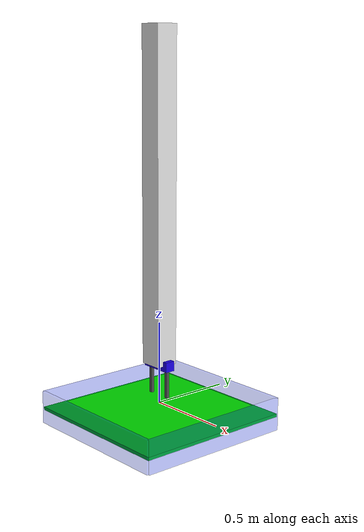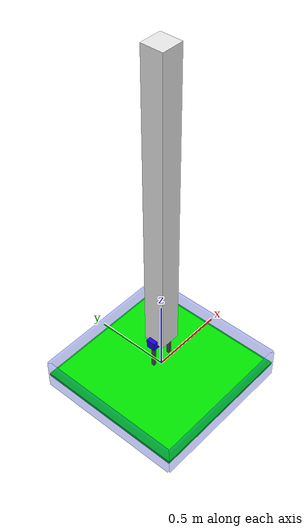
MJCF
<mujoco model="pushing2d">

    <compiler inertiafromgeom="auto" angle="radian" coordinate="local" />
    <option timestep="0.01" gravity="0 0 -9.81" iterations="20" integrator="Euler" />
    <default>
        <joint limited="false" damping="1" />
        <geom contype="1" conaffinity="1" condim="4" friction=".5 .1 .1" density="1000" margin="0.002" />
    </default>

    <worldbody>
        <camera name="maincam" mode= "fixed" fovy="32" euler="0.7 0 0" pos="0 -1.1 1.3"/>
        <body name="gripper" pos="0 0 0.25">
            <inertial pos="0 0 0" mass="30" diaginertia="166.667 166.667 166.667"/>
            <geom type="box" size=".1 .03 .03" rgba="0.1 0.0 0.9 1" />
            <geom type="box" size=".07 .07 1" rgba="0.9 0.9 0.9 1" pos="0 0 1"/>
            <joint name="ball_x" type="slide" pos="0 0 0" axis="1 0 0" limited="true" range="-0.35 0.35"/>
            <joint name="ball_y" type="slide" pos="0 0 0" axis="0 1 0" limited="true" range="-0.35 0.35"/>
            <joint name="ball_z" type="slide" pos="0 0 0" axis="0 0 1"  limited="true" range="-0.08 0.25"/>

            <body name="finger1" pos="-0.07 0 -0.1">
                <geom type="box" size=".01 .01 .1" rgba="0.3 0.3 0.3 1" />
            </body>

            <body name="finger2" pos="0.07 0 -0.1">
                <geom type="box" size=".01 .01 .1" rgba="0.3 0.3 0.3 1" />
            </body>

        </body>

        <body name="container" pos="0  0  -0.05">

            <body name="border_front" pos="0 -.5  0">
                 <geom type="box" size=".5 .01 .1" rgba="0 .1 .9 .3"/>
            </body>

            <body name="border_rear" pos="0 .5  0">
                 <geom type="box" size=".5 .01 .1" rgba="0 .1 .9 .3"/>
            </body>

            <body name="border_right" pos=".5 0  0">
                 <geom type="box" size=".01  .5 .1" rgba="0 .1 .9 .3"/>
            </body>

            <body name="border_left" pos="-.5 0  0">
                 <geom type="box" size=".01  .5 .1" rgba="0 .1 .9 .3"/>
            </body>

            <body name="table" pos="0 0 -.01">
                 <geom type="box" size=".5  .5 .01" rgba="0 .9 0 1"/>
            </body>
        </body>

    </worldbody>

    <actuator>
        <motor joint="ball_x" ctrlrange="-100.0 100.0" ctrllimited="true"/>
        <motor joint="ball_y" ctrlrange="-100.0 100.0" ctrllimited="true"/>
        <motor joint="ball_z" ctrlrange="-100.0 100.0" ctrllimited="true"/>
    </actuator>

</mujoco>
